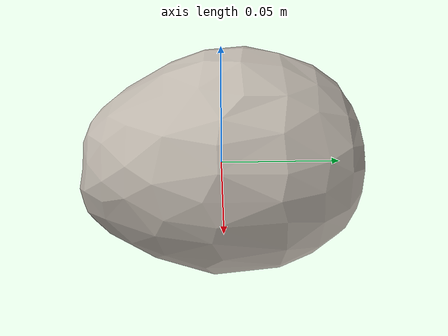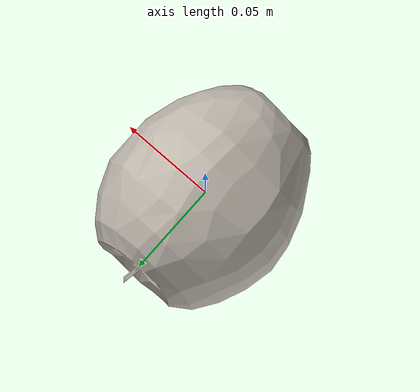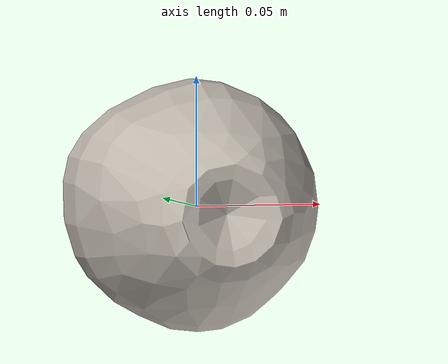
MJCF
<mujoco model="Apple_24">
  <compiler autolimits="true" boundmass="0.01" angle="radian"/>
  <default>
    <default class="/">
      <default class="__VISUAL_MJT__">
        <geom contype="0" conaffinity="0" group="0"/>
      </default>
      <default class="__STRUCTURAL_MJT__">
        <geom contype="8" conaffinity="15" group="4" friction="0.90000000000000002 0.90000000000000002 0.001" solref="0.025000000000000001 1" solimp="0.998 0.998 0.001"/>
      </default>
      <default class="__DYNAMIC_MJT__">
        <geom contype="1" conaffinity="15" group="4" friction="0.90000000000000002 0.90000000000000002 0.001" solref="0.025000000000000001 1" solimp="0.998 0.998 0.001"/>
      </default>
    </default>
  </default>
  <asset>
    <texture name="Apple2_Mat3" type="2d" file="Apple2_AlbedoTransparency3.png"/>
    <material name="material_Apple2_Mat3" class="/" texture="Apple2_Mat3" specular="0.5" shininess="0.5" rgba="1 1 1 1"/>
    <mesh name="Apple_24_apple_b9" class="/" file="Apple_24_apple_b9/Apple_24_apple_b9.obj" scale="1 1 1"/>
  </asset>
  <worldbody>
    <body name="Apple_24">
      <joint name="Apple_24_free" class="/" type="free" pos="0 0 0" axis="0 0 1" stiffness="0" range="0 0" armature="0" damping="0.10000000000000001" frictionloss="0"/>
      <body name="Apple_24_apple_b9" pos="-0.00076000000000000004 0.00365 0" quat="1 0 0 0">
        <geom name="Apple_24_apple_b9" class="__VISUAL_MJT__" type="mesh" material="material_Apple2_Mat3" shellinertia="false" mesh="Apple_24_apple_b9"/>
        <geom name="Apple_24_PrimitiveCollider_0" class="__DYNAMIC_MJT__" type="capsule" size="0.049356698989868164 0.012460045516490936" rgba="0 1 0 1" pos="-0.00075602531433105469 -0.0036544129252433777 0" quat="0.70710678118654757 0.70710678118654746 0 0"/>
      </body>
    </body>
  </worldbody>
</mujoco>
